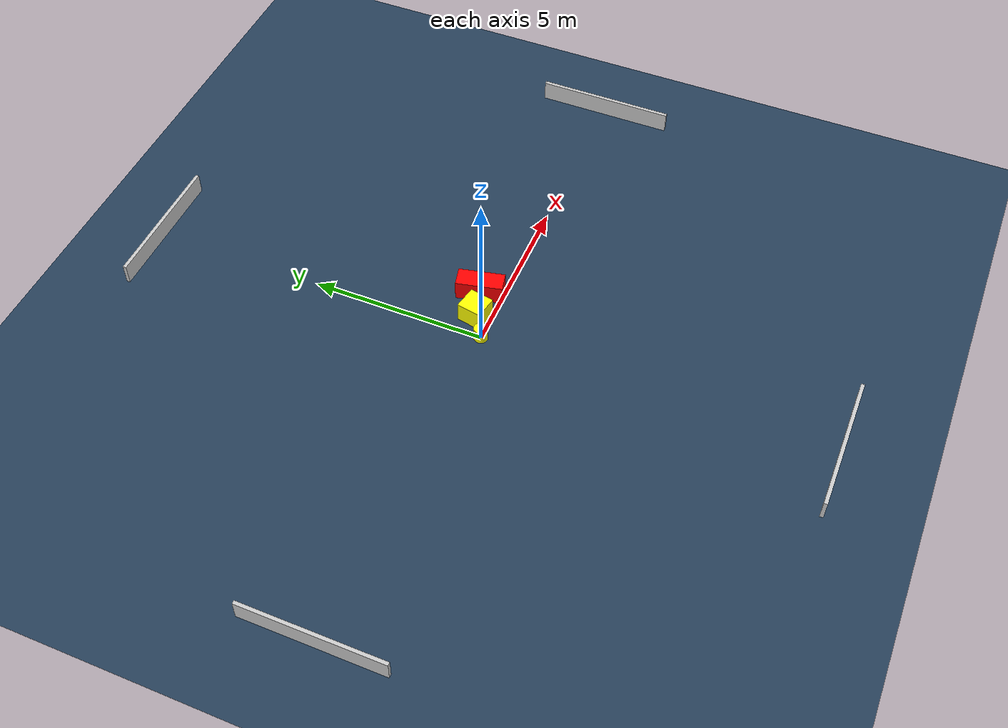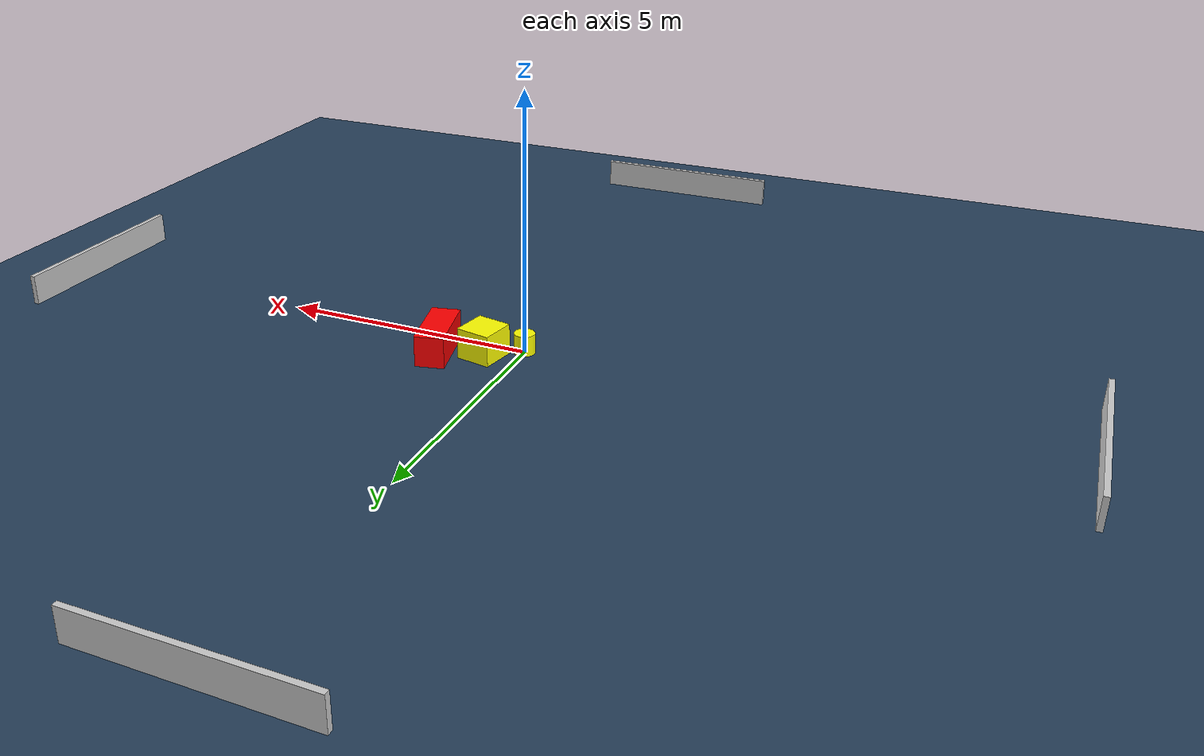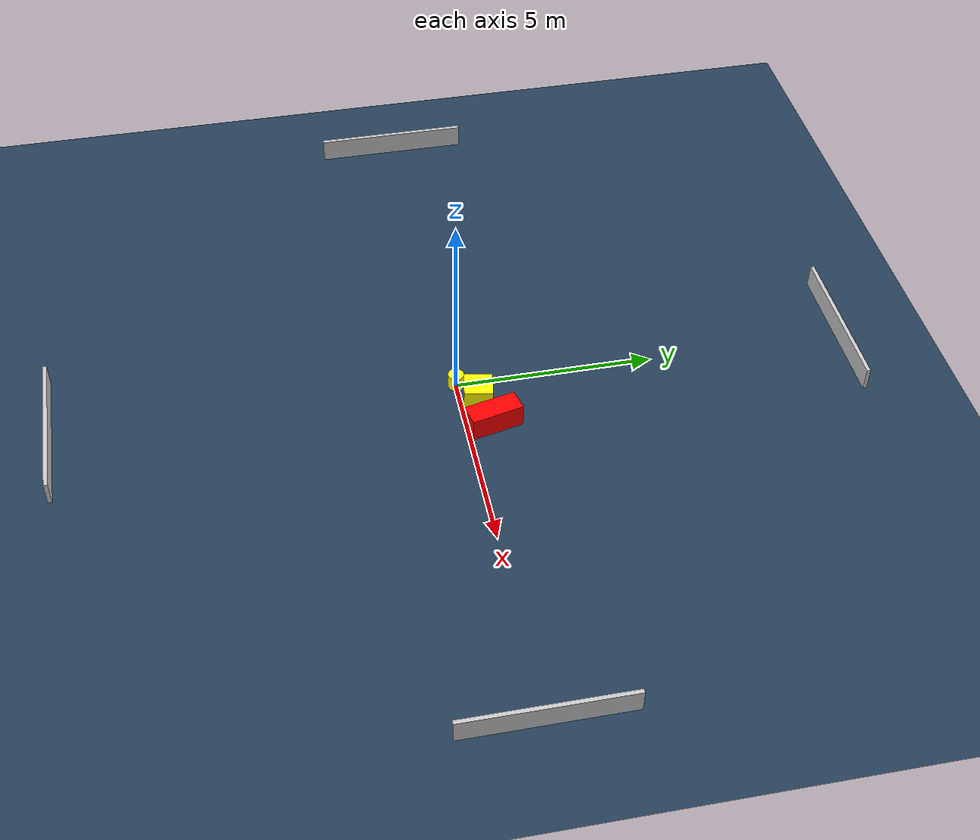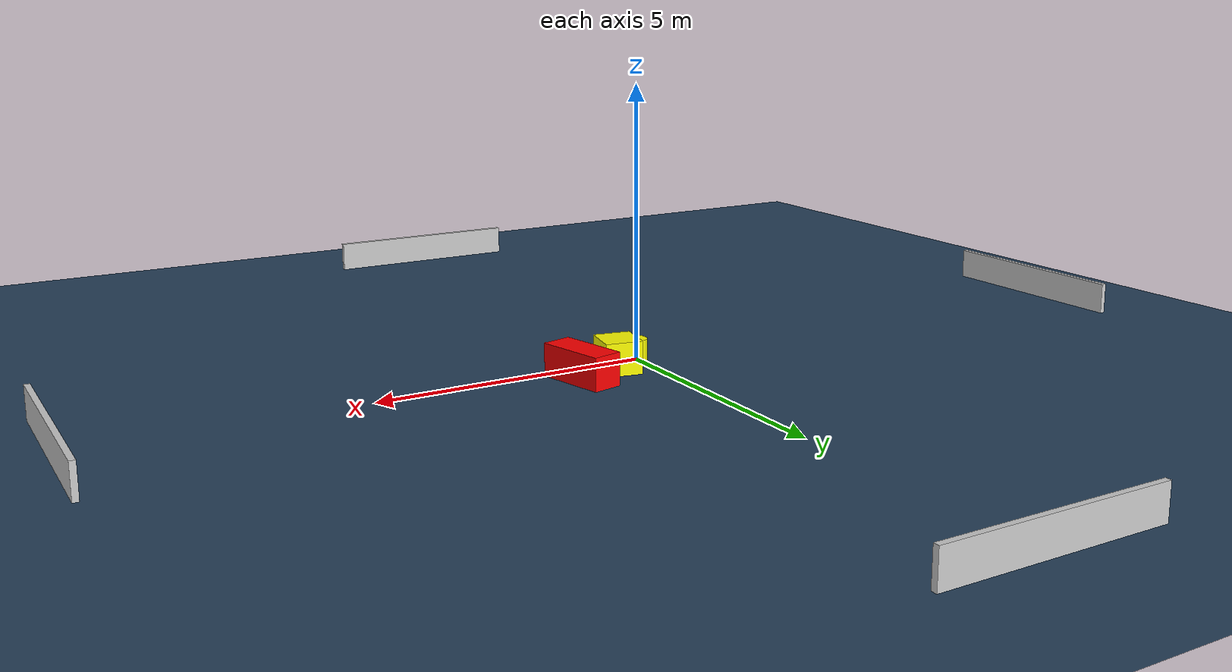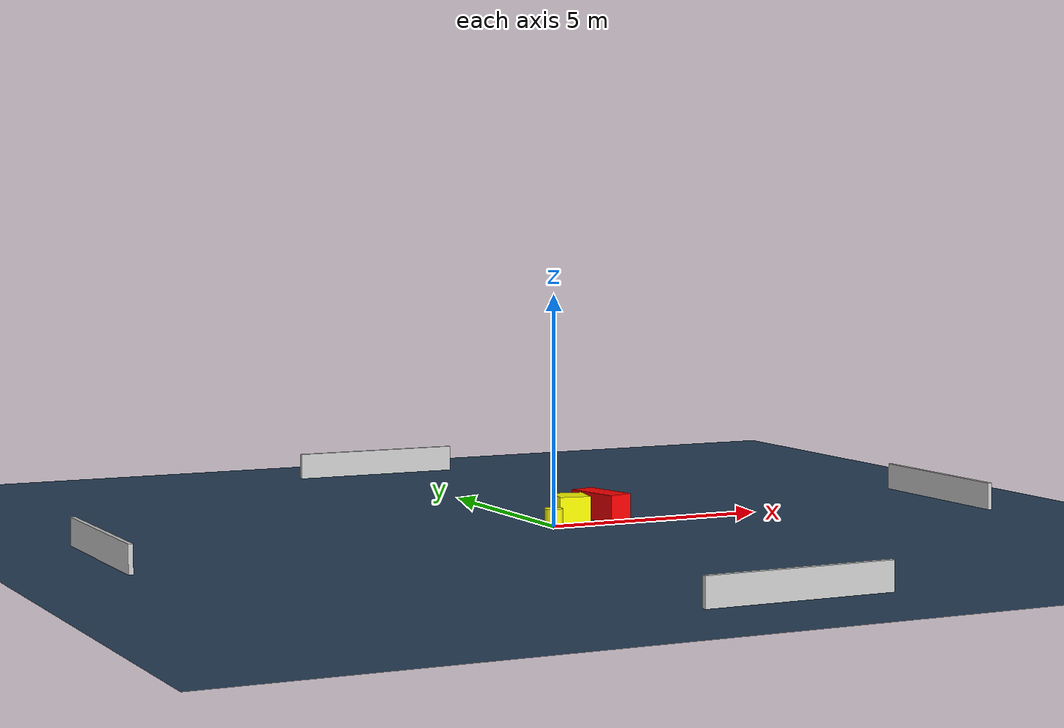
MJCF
<?xml version="1.0" ?>
<mujoco model="generated_environment">
  <option timestep="0.01" integrator="RK4" cone="elliptic"/>
  <default>
    <geom density="1"/>
  </default>
  <asset>
    <texture builtin="gradient" height="3072" name="skybox" rgb1="0.3 0.5 0.7" rgb2="0 0 0" type="skybox" width="512"/>
    <texture builtin="checker" height="300" name="groundplane" rgb1="0.2 0.3 0.4" rgb2="0.1 0.2 0.3" type="2d" width="300"/>
    <material name="groundplane" reflectance="0.2" texrepeat="5 5" texture="groundplane"/>
  </asset>
  <worldbody>
    <light dir="0 0 -1" directional="true" pos="0 0 1.5"/>
    <geom condim="3" friction="0.5 0.005 0.001" material="groundplane" name="floor" pos="0 0 0" size="0 0 0.05" type="plane"/>
    <body name="walls">
      <geom name="wall_1" condim="4" pos="-10.0 0.0 0.3" rgba="0.800000011920929 0.800000011920929 0.800000011920929 1.0" size="0.05 2.0 0.3" type="box"/>
      <geom name="wall_2" condim="4" pos="10.0 0.0 0.3" rgba="0.800000011920929 0.800000011920929 0.800000011920929 1.0" size="0.05 2.0 0.3" type="box"/>
      <geom name="wall_3" condim="4" pos="0.0 -10.0 0.3" rgba="0.800000011920929 0.800000011920929 0.800000011920929 1.0" size="2.0 0.05 0.3" type="box"/>
      <geom name="wall_4" condim="4" pos="0.0 10.0 0.3" rgba="0.800000011920929 0.800000011920929 0.800000011920929 1.0" size="2.0 0.05 0.3" type="box"/>
    </body>
    <body name="robot">
      <joint name="joint_x" type="slide" pos="0 0 0" axis="1 0 0"/>
      <joint name="joint_y" type="slide" pos="0 0 0" axis="0 1 0"/>
      <geom name="robot" type="cylinder" pos="0.0 0.0 0.2" size="0.2 0.2 0.0" mass="5.0" friction="1.0 0.005 0.0001" condim="4" rgba="1.0 1.0 0.0 1.0"/>
    </body>
    <body name="obstacle_1_movable">
      <geom name="obstacle_1_movable" condim="4" pos="0.6405064903536016 0.43491791387147316 0.3" euler="0 0 349.2061602926604" friction="0.0 0.005 0.001" rgba="1.0 1.0 0.0 1.0" size="0.34073188435950486 0.35292698425758995 0.3" type="box" mass="0.1"/>
      <joint type="free"/>
    </body>
    <body name="obstacle_2_static">
      <geom name="obstacle_2_static" condim="4" pos="1.486483025194409 0.6447531782462567 0.3" euler="0 0 103.06220567047014" friction="0.0 0.005 0.001" rgba="1.0 0.0 0.0 1.0" size="0.66311202209807 0.27797020607977596 0.3" type="box"/>
    </body>
  </worldbody>
  <actuator>
    <motor name="actuator_x" joint="joint_x" gear="1" ctrlrange="-1 1"/>
    <motor name="actuator_y" joint="joint_y" gear="1" ctrlrange="-1 1"/>
  </actuator>
</mujoco>
